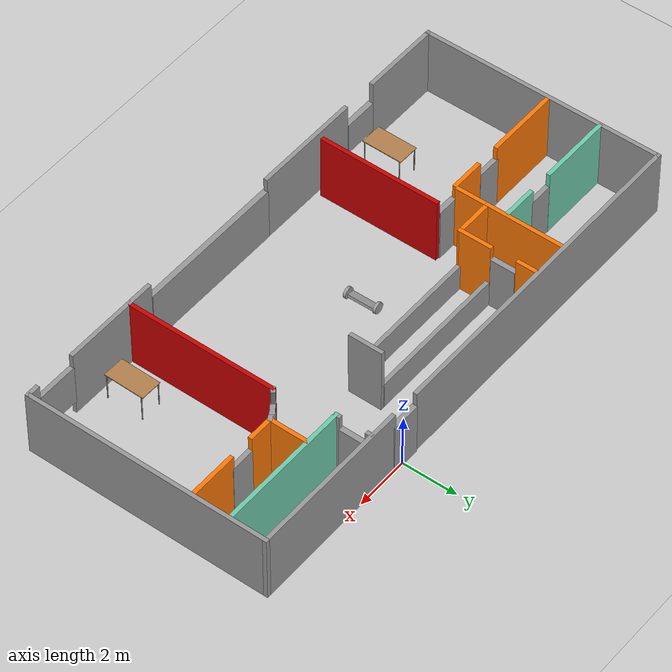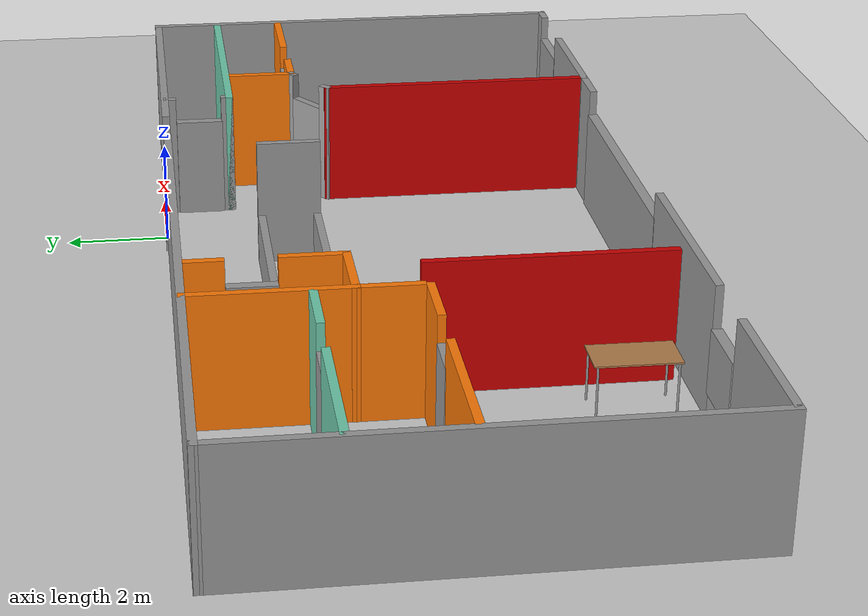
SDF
<sdf version="1.7">
 <world name="default">
  <plugin name="hello" filename="libhello.so"/>
  <light name="sun" type="directional">
   <pose>0 0 10 0 -0 0</pose>
   <diffuse>0.8 0.8 0.8 1</diffuse>
   <specular>0.2 0.2 0.2 1</specular>
   <attenuation>
    <range>1000</range>
    <constant>0.9</constant>
    <linear>0.01</linear>
    <quadratic>0.001</quadratic>
   </attenuation>
   <direction>-0.5 0.1 -0.9</direction>
   <spot><inner_angle>0</inner_angle><outer_angle>0</outer_angle><falloff>0</falloff></spot>
  </light>
  <model name="ground_plane">
   <static>1</static>
   <link name="link">
    <collision name="collision">
     <geometry><plane><normal>0 0 1</normal><size>100 100</size></plane></geometry>
     <surface>
      <contact><collide_bitmask>65535</collide_bitmask></contact>
      <friction><ode><mu>100</mu><mu2>50</mu2></ode></friction>
     </surface>
    </collision>
    <visual name="visual">
     <cast_shadows>0</cast_shadows>
     <geometry><plane><normal>0 0 1</normal><size>100 100</size></plane></geometry>
     <material>
      <script><uri>file://media/materials/scripts/gazebo.material</uri><name>Gazebo/Grey</name></script>
     </material>
    </visual>
   </link>
  </model>
  <gravity>0 0 -9.8</gravity>
  <magnetic_field>6e-06 2.3e-05 -4.2e-05</magnetic_field>
  <atmosphere type="adiabatic"/>
  <physics type="ode">
   <max_step_size>0.001</max_step_size>
   <real_time_factor>1</real_time_factor>
   <real_time_update_rate>1000</real_time_update_rate>
  </physics>
  <scene><ambient>0.4 0.4 0.4 1</ambient><background>0.7 0.7 0.7 1</background><shadows>1</shadows></scene>
  <spherical_coordinates>
   <surface_model>EARTH_WGS84</surface_model>
   <latitude_deg>0</latitude_deg>
   <longitude_deg>0</longitude_deg>
   <elevation>0</elevation>
   <heading_deg>0</heading_deg>
  </spherical_coordinates>
  <model name="Apt357">
   <pose>-3.29376 -4.44571 0 0 -0 0</pose>
   <link name="Door_0">
    <collision name="Door_0_Collision">
     <geometry><box><size>0.940227 0.2 2</size></box></geometry>
     <pose>0 0 1 0 -0 0</pose>
    </collision>
    <visual name="Door_0_Visual">
     <pose>0 0 1 0 -0 0</pose>
     <geometry><box><size>0.940227 0.2 2</size></box></geometry>
     <material>
      <script><uri>file://media/materials/scripts/gazebo.material</uri><name>Gazebo/Grey</name></script>
     </material>
    </visual>
    <pose>4.69619 3.68552 0 0 -0 1.5657</pose>
   </link>
   <link name="Door_1">
    <collision name="Door_1_Collision">
     <geometry><box><size>0.9 0.17 2</size></box></geometry>
     <pose>0 0 1 0 -0 0</pose>
    </collision>
    <visual name="Door_1_Visual">
     <pose>0 0 1 0 -0 0</pose>
     <geometry><box><size>0.9 0.17 2</size></box></geometry>
     <material>
      <script><uri>file://media/materials/scripts/gazebo.material</uri><name>Gazebo/Grey</name></script>
     </material>
    </visual>
    <pose>7.39446 1.68103 0 0 -0 -3.13021</pose>
   </link>
   <link name="Door_2">
    <collision name="Door_2_Collision">
     <geometry><box><size>0.9 0.17 2</size></box></geometry>
     <pose>0 0 1 0 -0 0</pose>
    </collision>
    <visual name="Door_2_Visual">
     <pose>0 0 1 0 -0 0</pose>
     <geometry><box><size>0.9 0.17 2</size></box></geometry>
     <material>
      <script><uri>file://media/materials/scripts/gazebo.material</uri><name>Gazebo/Grey</name></script>
     </material>
    </visual>
    <pose>5.51244 1.32777 0 0 -0 0.607379</pose>
   </link>
   <link name="Door_3">
    <collision name="Door_3_Collision">
     <geometry><box><size>5.53391 0.2 2</size></box></geometry>
     <pose>0 0 1 0 -0 0</pose>
    </collision>
    <visual name="Door_3_Visual">
     <pose>0 0 1 0 -0 0</pose>
     <geometry><box><size>5.53391 0.2 2</size></box></geometry>
     <material>
      <script><uri>file://media/materials/scripts/gazebo.material</uri><name>Gazebo/Grey</name></script>
     </material>
    </visual>
    <pose>1.32913 -4.46042 0 0 -0 0</pose>
   </link>
   <link name="Door_4">
    <collision name="Door_4_Collision">
     <geometry><box><size>1.08354 0.2 2</size></box></geometry>
     <pose>0 0 1 0 -0 0</pose>
    </collision>
    <visual name="Door_4_Visual">
     <pose>0 0 1 0 -0 0</pose>
     <geometry><box><size>1.08354 0.2 2</size></box></geometry>
     <material>
      <script><uri>file://media/materials/scripts/gazebo.material</uri><name>Gazebo/Grey</name></script>
     </material>
    </visual>
    <pose>3.22104 4.3933 0 0 -0 0</pose>
   </link>
   <link name="Door_5">
    <collision name="Door_5_Collision">
     <geometry><box><size>0.913225 0.2 2</size></box></geometry>
     <pose>0 0 1 0 -0 0</pose>
    </collision>
    <visual name="Door_5_Visual">
     <pose>0 0 1 0 -0 0</pose>
     <geometry><box><size>0.913225 0.2 2</size></box></geometry>
     <material>
      <script><uri>file://media/materials/scripts/gazebo.material</uri><name>Gazebo/Grey</name></script>
     </material>
    </visual>
    <pose>-3.39979 3.13846 0 0 0 -1.5708</pose>
   </link>
   <link name="Door_7">
    <collision name="Door_7_Collision">
     <geometry><box><size>0.782138 0.2 2</size></box></geometry>
     <pose>0 0 1 0 -0 0</pose>
    </collision>
    <visual name="Door_7_Visual">
     <pose>0 0 1 0 -0 0</pose>
     <geometry><box><size>0.782138 0.2 2</size></box></geometry>
     <material>
      <script><uri>file://media/materials/scripts/gazebo.material</uri><name>Gazebo/Grey</name></script>
     </material>
    </visual>
    <pose>-4.3167 0.241425 0 0 -0 0</pose>
   </link>
   <link name="Door_8">
    <collision name="Door_8_Collision">
     <geometry><box><size>0.9 0.17 2</size></box></geometry>
     <pose>0 0 1 0 -0 0</pose>
    </collision>
    <visual name="Door_8_Visual">
     <pose>0 0 1 0 -0 0</pose>
     <geometry><box><size>0.9 0.17 2</size></box></geometry>
     <material>
      <script><uri>file://media/materials/scripts/gazebo.material</uri><name>Gazebo/Grey</name></script>
     </material>
    </visual>
    <pose>-6.41069 0.265381 0 0 -0 3.13789</pose>
   </link>
   <link name="Door_9">
    <collision name="Door_9_Collision">
     <geometry><box><size>0.9 0.17 2</size></box></geometry>
     <pose>0 0 1 0 -0 0</pose>
    </collision>
    <visual name="Door_9_Visual">
     <pose>0 0 1 0 -0 0</pose>
     <geometry><box><size>0.9 0.17 2</size></box></geometry>
     <material>
      <script><uri>file://media/materials/scripts/gazebo.material</uri><name>Gazebo/Grey</name></script>
     </material>
    </visual>
    <pose>-6.43144 2.21143 0 0 -0 3.14159</pose>
   </link>
   <link name="Wall_10">
    <collision name="Wall_10_Collision">
     <geometry><box><size>5 0.15 2.5</size></box></geometry>
     <pose>0 0 1.25 0 -0 0</pose>
    </collision>
    <visual name="Wall_10_Visual">
     <pose>0 0 1.25 0 -0 0</pose>
     <geometry><box><size>5 0.15 2.5</size></box></geometry>
     <material>
      <script><uri>file://media/materials/scripts/gazebo.material</uri><name>Gazebo/Grey</name></script>
      <ambient>0.435294 0.796078 0.67451 1</ambient>
     </material>
     <meta><layer>0</layer></meta>
    </visual>
    <pose>7.12809 3.06139 0 0 -0 0</pose>
   </link>
   <link name="Wall_12">
    <collision name="Wall_12_Collision">
     <geometry><box><size>1.5 0.15 2.5</size></box></geometry>
     <pose>0 0 1.25 0 -0 0</pose>
    </collision>
    <visual name="Wall_12_Visual">
     <pose>0 0 1.25 0 -0 0</pose>
     <geometry><box><size>1.5 0.15 2.5</size></box></geometry>
     <material>
      <script><uri>file://media/materials/scripts/gazebo.material</uri><name>Gazebo/Grey</name></script>
      <ambient>0.996078 0.47451 0.0196078 1</ambient>
     </material>
     <meta><layer>0</layer></meta>
    </visual>
    <pose>6.02154 2.34761 0 0 -0 -1.5708</pose>
   </link>
   <link name="Wall_13">
    <collision name="Wall_13_Collision">
     <geometry><box><size>1 0.15 2.5</size></box></geometry>
     <pose>0 0 1.25 0 -0 0</pose>
    </collision>
    <visual name="Wall_13_Visual">
     <pose>0 0 1.25 0 -0 0</pose>
     <geometry><box><size>1 0.15 2.5</size></box></geometry>
     <material>
      <script><uri>file://media/materials/scripts/gazebo.material</uri><name>Gazebo/Grey</name></script>
      <ambient>0.996078 0.47451 0.0196078 1</ambient>
     </material>
     <meta><layer>0</layer></meta>
    </visual>
    <pose>6.44654 1.67261 0 0 -0 0</pose>
   </link>
   <link name="Wall_15">
    <collision name="Wall_15_Collision">
     <geometry><box><size>1.75 0.15 2.5</size></box></geometry>
     <pose>0 0 1.25 0 -0 0</pose>
    </collision>
    <visual name="Wall_15_Visual">
     <pose>0 0 1.25 0 -0 0</pose>
     <geometry><box><size>1.75 0.15 2.5</size></box></geometry>
     <material>
      <script><uri>file://media/materials/scripts/gazebo.material</uri><name>Gazebo/Grey</name></script>
      <ambient>0.996078 0.47451 0.0196078 1</ambient>
     </material>
     <meta><layer>0</layer></meta>
    </visual>
    <pose>8.65573 1.68871 0 0 -0 0</pose>
   </link>
   <link name="Wall_18">
    <collision name="Wall_18_Collision">
     <geometry><box><size>0.25 0.15 2.5</size></box></geometry>
     <pose>0 0 1.25 0 -0 0</pose>
    </collision>
    <visual name="Wall_18_Visual">
     <pose>0 0 1.25 0 -0 0</pose>
     <geometry><box><size>0.25 0.15 2.5</size></box></geometry>
     <material>
      <script><uri>file://media/materials/scripts/gazebo.material</uri><name>Gazebo/Grey</name></script>
      <ambient>1 1 1 1</ambient>
     </material>
     <meta><layer>0</layer></meta>
    </visual>
    <pose>5.97824 1.64761 0 0 -0 -2.61799</pose>
   </link>
   <link name="Wall_2">
    <collision name="Wall_2_Collision">
     <geometry><box><size>8.97428 0.15 2.5</size></box></geometry>
     <pose>0 0 1.25 0 -0 0</pose>
    </collision>
    <visual name="Wall_2_Visual">
     <pose>0 0 1.25 0 -0 0</pose>
     <geometry><box><size>8.97428 0.15 2.5</size></box></geometry>
     <material>
      <script><uri>file://media/materials/scripts/gazebo.material</uri><name>Gazebo/Grey</name></script>
      <ambient>1 1 1 1</ambient>
     </material>
     <meta><layer>0</layer></meta>
    </visual>
    <pose>-9.59402 -0.028495 0 0 -0 -1.56966</pose>
   </link>
   <link name="Wall_21">
    <collision name="Wall_21_Collision">
     <geometry><box><size>0.25 0.15 2.5</size></box></geometry>
     <pose>0 0 1.25 0 -0 0</pose>
    </collision>
    <visual name="Wall_21_Visual">
     <pose>0 0 1.25 0 -0 0</pose>
     <geometry><box><size>0.25 0.15 2.5</size></box></geometry>
     <material>
      <script><uri>file://media/materials/scripts/gazebo.material</uri><name>Gazebo/Grey</name></script>
      <ambient>1 1 1 1</ambient>
     </material>
     <meta><layer>0</layer></meta>
    </visual>
    <pose>5.08442 1.02531 0 0 -0 -2.35619</pose>
   </link>
   <link name="Wall_27">
    <collision name="Wall_27_Collision">
     <geometry><box><size>5.5 0.15 2.5</size></box></geometry>
     <pose>0 0 1.25 0 -0 0</pose>
    </collision>
    <visual name="Wall_27_Visual">
     <pose>0 0 1.25 0 -0 0</pose>
     <geometry><box><size>5.5 0.15 2.5</size></box></geometry>
     <material>
      <script><uri>file://media/materials/scripts/gazebo.material</uri><name>Gazebo/Grey</name></script>
      <ambient>0.8 0 0 1</ambient>
     </material>
     <meta><layer>0</layer></meta>
    </visual>
    <pose>5.04907 -1.68504 0 0 -0 -1.5708</pose>
   </link>
   <link name="Wall_29">
    <collision name="Wall_29_Collision">
     <geometry><box><size>0.5 0.15 2.5</size></box></geometry>
     <pose>0 0 1.25 0 -0 0</pose>
    </collision>
    <visual name="Wall_29_Visual">
     <pose>0 0 1.25 0 -0 0</pose>
     <geometry><box><size>0.5 0.15 2.5</size></box></geometry>
     <material>
      <script><uri>file://media/materials/scripts/gazebo.material</uri><name>Gazebo/Grey</name></script>
      <ambient>1 1 1 1</ambient>
     </material>
     <meta><layer>0</layer></meta>
    </visual>
    <pose>9.42411 -4.46264 0 0 -0 3.14159</pose>
   </link>
   <link name="Wall_31">
    <collision name="Wall_31_Collision">
     <geometry><box><size>2.75 0.15 2.5</size></box></geometry>
     <pose>0 0 1.25 0 -0 0</pose>
    </collision>
    <visual name="Wall_31_Visual">
     <pose>0 0 1.25 0 -0 0</pose>
     <geometry><box><size>2.75 0.15 2.5</size></box></geometry>
     <material>
      <script><uri>file://media/materials/scripts/gazebo.material</uri><name>Gazebo/Grey</name></script>
      <ambient>1 1 1 1</ambient>
     </material>
     <meta><layer>0</layer></meta>
    </visual>
    <pose>6.32022 -4.46113 0 0 -0 3.14159</pose>
   </link>
   <link name="Wall_33">
    <collision name="Wall_33_Collision">
     <geometry><box><size>1 0.15 2.5</size></box></geometry>
     <pose>0 0 1.25 0 -0 0</pose>
    </collision>
    <visual name="Wall_33_Visual">
     <pose>0 0 1.25 0 -0 0</pose>
     <geometry><box><size>1 0.15 2.5</size></box></geometry>
     <material>
      <script><uri>file://media/materials/scripts/gazebo.material</uri><name>Gazebo/Grey</name></script>
      <ambient>1 1 1 1</ambient>
     </material>
     <meta><layer>0</layer></meta>
    </visual>
    <pose>4.59522 -4.46113 0 0 -0 3.14159</pose>
   </link>
   <link name="Wall_35">
    <collision name="Wall_35_Collision">
     <geometry><box><size>3.0034 0.15 2.5</size></box></geometry>
     <pose>0 0 1.25 0 -0 0</pose>
    </collision>
    <visual name="Wall_35_Visual">
     <pose>0 0 1.25 0 -0 0</pose>
     <geometry><box><size>3.0034 0.15 2.5</size></box></geometry>
     <material>
      <script><uri>file://media/materials/scripts/gazebo.material</uri><name>Gazebo/Grey</name></script>
      <ambient>0.996078 0.47451 0.0196078 1</ambient>
     </material>
     <meta><layer>0</layer></meta>
    </visual>
    <pose>-4.72037 2.93601 0 0 -0 -1.57307</pose>
   </link>
   <link name="Wall_39">
    <collision name="Wall_39_Collision">
     <geometry><box><size>12.3481 0.15 2.5</size></box></geometry>
     <pose>0 0 1.25 0 -0 0</pose>
    </collision>
    <visual name="Wall_39_Visual">
     <pose>0 0 1.25 0 -0 0</pose>
     <geometry><box><size>12.3481 0.15 2.5</size></box></geometry>
     <material>
      <script><uri>file://media/materials/scripts/gazebo.material</uri><name>Gazebo/Grey</name></script>
      <ambient>1 1 1 1</ambient>
     </material>
     <meta><layer>0</layer></meta>
    </visual>
    <pose>-3.49996 4.38836 0 0 -0 -0.000164</pose>
   </link>
   <link name="Wall_41">
    <collision name="Wall_41_Collision">
     <geometry><box><size>6 0.15 2.5</size></box></geometry>
     <pose>0 0 1.25 0 -0 0</pose>
    </collision>
    <visual name="Wall_41_Visual">
     <pose>0 0 1.25 0 -0 0</pose>
     <geometry><box><size>6 0.15 2.5</size></box></geometry>
     <material>
      <script><uri>file://media/materials/scripts/gazebo.material</uri><name>Gazebo/Grey</name></script>
      <ambient>1 1 1 1</ambient>
     </material>
     <meta><layer>0</layer></meta>
    </visual>
    <pose>6.67411 4.38736 0 0 -0 0</pose>
   </link>
   <link name="Wall_43">
    <collision name="Wall_43_Collision">
     <geometry><box><size>1.50654 0.15 2.5</size></box></geometry>
     <pose>0 0 1.25 0 -0 0</pose>
    </collision>
    <visual name="Wall_43_Visual">
     <pose>0 0 1.25 0 -0 0</pose>
     <geometry><box><size>1.50654 0.15 2.5</size></box></geometry>
     <material>
      <script><uri>file://media/materials/scripts/gazebo.material</uri><name>Gazebo/Grey</name></script>
      <ambient>0.996078 0.47451 0.0196078 1</ambient>
     </material>
     <meta><layer>0</layer></meta>
    </visual>
    <pose>-4.04535 1.51095 0 0 -0 0.00241</pose>
   </link>
   <link name="Wall_44">
    <collision name="Wall_44_Collision">
     <geometry><box><size>1.25006 0.15 2.5</size></box></geometry>
     <pose>0 0 1.25 0 -0 0</pose>
    </collision>
    <visual name="Wall_44_Visual">
     <pose>0 0 1.25 0 -0 0</pose>
     <geometry><box><size>1.25006 0.15 2.5</size></box></geometry>
     <material>
      <script><uri>file://media/materials/scripts/gazebo.material</uri><name>Gazebo/Grey</name></script>
      <ambient>0.996078 0.47451 0.0196078 1</ambient>
     </material>
     <meta><layer>0</layer></meta>
    </visual>
    <pose>-3.36708 2.06261 0 0 -0 1.5708</pose>
   </link>
   <link name="Wall_46">
    <collision name="Wall_46_Collision">
     <geometry><box><size>0.75 0.15 2.5</size></box></geometry>
     <pose>0 0 1.25 0 -0 0</pose>
    </collision>
    <visual name="Wall_46_Visual">
     <pose>0 0 1.25 0 -0 0</pose>
     <geometry><box><size>0.75 0.15 2.5</size></box></geometry>
     <material>
      <script><uri>file://media/materials/scripts/gazebo.material</uri><name>Gazebo/Grey</name></script>
      <ambient>0.996078 0.47451 0.0196078 1</ambient>
     </material>
     <meta><layer>0</layer></meta>
    </visual>
    <pose>-3.4003 3.97345 0 0 -0 1.5708</pose>
   </link>
   <link name="Wall_5">
    <collision name="Wall_5_Collision">
     <geometry><box><size>9 0.15 2.5</size></box></geometry>
     <pose>0 0 1.25 0 -0 0</pose>
    </collision>
    <visual name="Wall_5_Visual">
     <pose>0 0 1.25 0 -0 0</pose>
     <geometry><box><size>9 0.15 2.5</size></box></geometry>
     <material>
      <script><uri>file://media/materials/scripts/gazebo.material</uri><name>Gazebo/Grey</name></script>
      <ambient>1 1 1 1</ambient>
     </material>
     <meta><layer>0</layer></meta>
    </visual>
    <pose>9.59911 -0.037639 0 0 -0 1.5708</pose>
   </link>
   <link name="Wall_50">
    <collision name="Wall_50_Collision">
     <geometry><box><size>5.5 0.15 1</size></box></geometry>
     <pose>0 0 0.5 0 -0 0</pose>
    </collision>
    <visual name="Wall_50_Visual">
     <pose>0 0 0.5 0 -0 0</pose>
     <geometry><box><size>5.5 0.15 1</size></box></geometry>
     <material>
      <script><uri>file://media/materials/scripts/gazebo.material</uri><name>Gazebo/Grey</name></script>
      <ambient>1 1 1 1</ambient>
     </material>
     <meta><layer>0</layer></meta>
    </visual>
    <pose>-0.692084 1.52128 0 0 -0 0</pose>
   </link>
   <link name="Wall_54">
    <collision name="Wall_54_Collision">
     <geometry><box><size>5.5 0.15 1</size></box></geometry>
     <pose>0 0 0.5 0 -0 0</pose>
    </collision>
    <visual name="Wall_54_Visual">
     <pose>0 0 0.5 0 -0 0</pose>
     <geometry><box><size>5.5 0.15 1</size></box></geometry>
     <material>
      <script><uri>file://media/materials/scripts/gazebo.material</uri><name>Gazebo/Grey</name></script>
      <ambient>1 1 1 1</ambient>
     </material>
     <meta><layer>0</layer></meta>
    </visual>
    <pose>-0.692084 2.61264 0 0 -0 0</pose>
   </link>
   <link name="Wall_56">
    <collision name="Wall_56_Collision">
     <geometry><box><size>1.24136 0.15 2.5</size></box></geometry>
     <pose>0 0 1.25 0 -0 0</pose>
    </collision>
    <visual name="Wall_56_Visual">
     <pose>0 0 1.25 0 -0 0</pose>
     <geometry><box><size>1.24136 0.15 2.5</size></box></geometry>
     <material>
      <script><uri>file://media/materials/scripts/gazebo.material</uri><name>Gazebo/Grey</name></script>
      <ambient>1 1 1 1</ambient>
     </material>
     <meta><layer>0</layer></meta>
    </visual>
    <pose>1.98292 2.06696 0 0 -0 -1.5708</pose>
   </link>
   <link name="Wall_59">
    <collision name="Wall_59_Collision">
     <geometry><box><size>3 0.15 2.5</size></box></geometry>
     <pose>0 0 1.25 0 -0 0</pose>
    </collision>
    <visual name="Wall_59_Visual">
     <pose>0 0 1.25 0 -0 0</pose>
     <geometry><box><size>3 0.15 2.5</size></box></geometry>
     <material>
      <script><uri>file://media/materials/scripts/gazebo.material</uri><name>Gazebo/Grey</name></script>
      <ambient>1 1 1 1</ambient>
     </material>
     <meta><layer>0</layer></meta>
    </visual>
    <pose>-8.15402 -4.44064 0 0 -0 0</pose>
   </link>
   <link name="Wall_61">
    <collision name="Wall_61_Collision">
     <geometry><box><size>4 0.15 2.5</size></box></geometry>
     <pose>0 0 1.25 0 -0 0</pose>
    </collision>
    <visual name="Wall_61_Visual">
     <pose>0 0 1.25 0 -0 0</pose>
     <geometry><box><size>4 0.15 2.5</size></box></geometry>
     <material>
      <script><uri>file://media/materials/scripts/gazebo.material</uri><name>Gazebo/Grey</name></script>
      <ambient>1 1 1 1</ambient>
     </material>
     <meta><layer>0</layer></meta>
    </visual>
    <pose>-3.39773 -4.44367 0 0 -0 0</pose>
   </link>
   <link name="Wall_63">
    <collision name="Wall_63_Collision">
     <geometry><box><size>1.25 0.15 2.5</size></box></geometry>
     <pose>0 0 1.25 0 -0 0</pose>
    </collision>
    <visual name="Wall_63_Visual">
     <pose>0 0 1.25 0 -0 0</pose>
     <geometry><box><size>1.25 0.15 2.5</size></box></geometry>
     <material>
      <script><uri>file://media/materials/scripts/gazebo.material</uri><name>Gazebo/Grey</name></script>
      <ambient>0.996078 0.47451 0.0196078 1</ambient>
     </material>
     <meta><layer>0</layer></meta>
    </visual>
    <pose>-4.71946 0.959312 0 0 -0 -1.56917</pose>
   </link>
   <link name="Wall_68">
    <collision name="Wall_68_Collision">
     <geometry><box><size>4.5 0.15 2.5</size></box></geometry>
     <pose>0 0 1.25 0 -0 0</pose>
    </collision>
    <visual name="Wall_68_Visual">
     <pose>0 0 1.25 0 -0 0</pose>
     <geometry><box><size>4.5 0.15 2.5</size></box></geometry>
     <material>
      <script><uri>file://media/materials/scripts/gazebo.material</uri><name>Gazebo/Grey</name></script>
      <ambient>0.8 0 0 1</ambient>
     </material>
     <meta><layer>0</layer></meta>
    </visual>
    <pose>-3.86018 -1.94563 0 0 -0 -1.5708</pose>
   </link>
   <link name="Wall_7">
    <collision name="Wall_7_Collision">
     <geometry><box><size>0.25 0.15 2.5</size></box></geometry>
     <pose>0 0 1.25 0 -0 0</pose>
    </collision>
    <visual name="Wall_7_Visual">
     <pose>0 0 1.25 0 -0 0</pose>
     <geometry><box><size>0.25 0.15 2.5</size></box></geometry>
     <material>
      <script><uri>file://media/materials/scripts/gazebo.material</uri><name>Gazebo/Grey</name></script>
      <ambient>1 1 1 1</ambient>
     </material>
     <meta><layer>0</layer></meta>
    </visual>
    <pose>4.69481 4.28508 0 0 -0 -1.5708</pose>
   </link>
   <link name="Wall_71">
    <collision name="Wall_71_Collision">
     <geometry><box><size>1.25 0.15 2.5</size></box></geometry>
     <pose>0 0 1.25 0 -0 0</pose>
    </collision>
    <visual name="Wall_71_Visual">
     <pose>0 0 1.25 0 -0 0</pose>
     <geometry><box><size>1.25 0.15 2.5</size></box></geometry>
     <material>
      <script><uri>file://media/materials/scripts/gazebo.material</uri><name>Gazebo/Grey</name></script>
      <ambient>0.996078 0.47451 0.0196078 1</ambient>
     </material>
     <meta><layer>0</layer></meta>
    </visual>
    <pose>-5.33522 0.26814 0 0 -0 3.14159</pose>
   </link>
   <link name="Wall_73">
    <collision name="Wall_73_Collision">
     <geometry><box><size>2.75 0.15 2.5</size></box></geometry>
     <pose>0 0 1.25 0 -0 0</pose>
    </collision>
    <visual name="Wall_73_Visual">
     <pose>0 0 1.25 0 -0 0</pose>
     <geometry><box><size>2.75 0.15 2.5</size></box></geometry>
     <material>
      <script><uri>file://media/materials/scripts/gazebo.material</uri><name>Gazebo/Grey</name></script>
      <ambient>0.996078 0.47451 0.0196078 1</ambient>
     </material>
     <meta><layer>0</layer></meta>
    </visual>
    <pose>-8.17183 0.26472 0 0 -0 3.14159</pose>
   </link>
   <link name="Wall_76">
    <collision name="Wall_76_Collision">
     <geometry><box><size>2.75 0.15 2.5</size></box></geometry>
     <pose>0 0 1.25 0 -0 0</pose>
    </collision>
    <visual name="Wall_76_Visual">
     <pose>0 0 1.25 0 -0 0</pose>
     <geometry><box><size>2.75 0.15 2.5</size></box></geometry>
     <material>
      <script><uri>file://media/materials/scripts/gazebo.material</uri><name>Gazebo/Grey</name></script>
      <ambient>0.435294 0.796078 0.67451 1</ambient>
     </material>
     <meta><layer>0</layer></meta>
    </visual>
    <pose>-8.23488 2.22575 0 0 -0 0</pose>
   </link>
   <link name="Wall_78">
    <collision name="Wall_78_Collision">
     <geometry><box><size>1.25 0.15 2.5</size></box></geometry>
     <pose>0 0 1.25 0 -0 0</pose>
    </collision>
    <visual name="Wall_78_Visual">
     <pose>0 0 1.25 0 -0 0</pose>
     <geometry><box><size>1.25 0.15 2.5</size></box></geometry>
     <material>
      <script><uri>file://media/materials/scripts/gazebo.material</uri><name>Gazebo/Grey</name></script>
      <ambient>0.435294 0.796078 0.67451 1</ambient>
     </material>
     <meta><layer>0</layer></meta>
    </visual>
    <pose>-5.39191 2.22022 0 0 -0 0</pose>
   </link>
   <link name="Wall_9">
    <collision name="Wall_9_Collision">
     <geometry><box><size>0.25 0.15 2.5</size></box></geometry>
     <pose>0 0 1.25 0 -0 0</pose>
    </collision>
    <visual name="Wall_9_Visual">
     <pose>0 0 1.25 0 -0 0</pose>
     <geometry><box><size>0.25 0.15 2.5</size></box></geometry>
     <material>
      <script><uri>file://media/materials/scripts/gazebo.material</uri><name>Gazebo/Grey</name></script>
      <ambient>1 1 1 1</ambient>
     </material>
     <meta><layer>0</layer></meta>
    </visual>
    <pose>4.70309 3.11139 0 0 -0 -1.5708</pose>
   </link>
   <link name="Window_0">
    <collision name="Window_0_Collision">
     <geometry><box><size>1.5 0.17 1.5</size></box></geometry>
     <pose>0 0 0.75 0 -0 0</pose>
    </collision>
    <visual name="Window_0_Visual">
     <pose>0 0 0.75 0 -0 0</pose>
     <geometry><box><size>1.5 0.17 1.5</size></box></geometry>
     <material>
      <script><uri>file://media/materials/scripts/gazebo.material</uri><name>Gazebo/Grey</name></script>
     </material>
    </visual>
    <pose>8.42477 -4.46113 0.5 0 -0 0</pose>
   </link>
   <link name="Window_1">
    <collision name="Window_1_Collision">
     <geometry><box><size>1.25 0.2 1.2</size></box></geometry>
     <pose>0 0 0.6 0 -0 0</pose>
    </collision>
    <visual name="Window_1_Visual">
     <pose>0 0 0.6 0 -0 0</pose>
     <geometry><box><size>1.25 0.2 1.2</size></box></geometry>
     <material>
      <script><uri>file://media/materials/scripts/gazebo.material</uri><name>Gazebo/Grey</name></script>
     </material>
    </visual>
    <pose>-6.02068 -4.44394 0.5 0 -0 0</pose>
   </link>
   <static>1</static>
  </model>
  <model name="table">
   <static>1</static>
   <link name="link_table">
    <collision name="surface">
     <pose>0 0 1 0 -0 0</pose>
     <geometry><box><size>1.5 0.8 0.03</size></box></geometry>
     <surface><friction><ode><mu>0.6</mu><mu2>0.6</mu2></ode></friction></surface>
    </collision>
    <visual name="visual11">
     <pose>0 0 1 0 -0 0</pose>
     <geometry><box><size>1.5 0.8 0.03</size></box></geometry>
     <material>
      <script><uri>file://media/materials/scripts/gazebo.material</uri><name>Gazebo/Wood</name></script>
     </material>
    </visual>
    <collision name="front_left_leg_c">
     <pose>0.68 0.38 0.5 0 -0 0</pose>
     <geometry><cylinder><radius>0.02</radius><length>1</length></cylinder></geometry>
    </collision>
    <visual name="front_left_leg_v">
     <pose>0.68 0.38 0.5 0 -0 0</pose>
     <geometry><cylinder><radius>0.02</radius><length>1</length></cylinder></geometry>
     <material>
      <script><uri>file://media/materials/scripts/gazebo.material</uri><name>Gazebo/Grey</name></script>
     </material>
    </visual>
    <collision name="front_right_leg_c">
     <pose>0.68 -0.38 0.5 0 -0 0</pose>
     <geometry><cylinder><radius>0.02</radius><length>1</length></cylinder></geometry>
    </collision>
    <visual name="front_right_leg_v">
     <pose>0.68 -0.38 0.5 0 -0 0</pose>
     <geometry><cylinder><radius>0.02</radius><length>1</length></cylinder></geometry>
     <material>
      <script><uri>file://media/materials/scripts/gazebo.material</uri><name>Gazebo/Grey</name></script>
     </material>
    </visual>
    <collision name="back_right_leg_c">
     <pose>-0.68 -0.38 0.5 0 -0 0</pose>
     <geometry><cylinder><radius>0.02</radius><length>1</length></cylinder></geometry>
    </collision>
    <visual name="back_right_leg_v">
     <pose>-0.68 -0.38 0.5 0 -0 0</pose>
     <geometry><cylinder><radius>0.02</radius><length>1</length></cylinder></geometry>
     <material>
      <script><uri>file://media/materials/scripts/gazebo.material</uri><name>Gazebo/Grey</name></script>
     </material>
    </visual>
    <collision name="back_left_leg_c">
     <pose>-0.68 0.38 0.5 0 -0 0</pose>
     <geometry><cylinder><radius>0.02</radius><length>1</length></cylinder></geometry>
    </collision>
    <visual name="back_left_leg_v">
     <pose>-0.68 0.38 0.5 0 -0 0</pose>
     <geometry><cylinder><radius>0.02</radius><length>1</length></cylinder></geometry>
     <material>
      <script><uri>file://media/materials/scripts/gazebo.material</uri><name>Gazebo/Grey</name></script>
     </material>
    </visual>
   </link>
   <pose>3.01258 -7.79707 0 0 -0 1.55637</pose>
  </model>
  <model name="table_0">
   <static>1</static>
   <link name="link_table2">
    <collision name="surface">
     <pose>0 0 1 0 -0 0</pose>
     <geometry><box><size>1.5 0.8 0.03</size></box></geometry>
     <surface><friction><ode><mu>0.6</mu><mu2>0.6</mu2></ode></friction></surface>
    </collision>
    <visual name="visual1">
     <pose>0 0 1 0 -0 0</pose>
     <geometry><box><size>1.5 0.8 0.03</size></box></geometry>
     <material>
      <script><uri>file://media/materials/scripts/gazebo.material</uri><name>Gazebo/Wood</name></script>
     </material>
    </visual>
    <collision name="front_left_leg_c">
     <pose>0.68 0.38 0.5 0 -0 0</pose>
     <geometry><cylinder><radius>0.02</radius><length>1</length></cylinder></geometry>
    </collision>
    <visual name="front_left_leg_v">
     <pose>0.68 0.38 0.5 0 -0 0</pose>
     <geometry><cylinder><radius>0.02</radius><length>1</length></cylinder></geometry>
     <material>
      <script><uri>file://media/materials/scripts/gazebo.material</uri><name>Gazebo/Grey</name></script>
     </material>
    </visual>
    <collision name="front_right_leg_c">
     <pose>0.68 -0.38 0.5 0 -0 0</pose>
     <geometry><cylinder><radius>0.02</radius><length>1</length></cylinder></geometry>
    </collision>
    <visual name="front_right_leg_v">
     <pose>0.68 -0.38 0.5 0 -0 0</pose>
     <geometry><cylinder><radius>0.02</radius><length>1</length></cylinder></geometry>
     <material>
      <script><uri>file://media/materials/scripts/gazebo.material</uri><name>Gazebo/Grey</name></script>
     </material>
    </visual>
    <collision name="back_right_leg_c">
     <pose>-0.68 -0.38 0.5 0 -0 0</pose>
     <geometry><cylinder><radius>0.02</radius><length>1</length></cylinder></geometry>
    </collision>
    <visual name="back_right_leg_v">
     <pose>-0.68 -0.38 0.5 0 -0 0</pose>
     <geometry><cylinder><radius>0.02</radius><length>1</length></cylinder></geometry>
     <material>
      <script><uri>file://media/materials/scripts/gazebo.material</uri><name>Gazebo/Grey</name></script>
     </material>
    </visual>
    <collision name="back_left_leg_c">
     <pose>-0.68 0.38 0.5 0 -0 0</pose>
     <geometry><cylinder><radius>0.02</radius><length>1</length></cylinder></geometry>
    </collision>
    <visual name="back_left_leg_v">
     <pose>-0.68 0.38 0.5 0 -0 0</pose>
     <geometry><cylinder><radius>0.02</radius><length>1</length></cylinder></geometry>
     <material>
      <script><uri>file://media/materials/scripts/gazebo.material</uri><name>Gazebo/Grey</name></script>
     </material>
    </visual>
   </link>
   <pose>-9.00302 -7.42334 0.471824 0 -0 1.56286</pose>
  </model>
  <model name="chasis_bada">
   <link name="link_0">
    <inertial>
     <mass>1</mass>
     <inertia>
      <ixx>0.166667</ixx>
      <ixy>0</ixy>
      <ixz>0</ixz>
      <iyy>0.166667</iyy>
      <iyz>0</iyz>
      <izz>0.166667</izz>
     </inertia>
    </inertial>
    <pose>-0.016667 0 -0.029999 0 -0 0</pose>
    <visual name="visual">
     <geometry><box><size>0.3 1 0.1</size></box></geometry>
     <material>
      <lighting>1</lighting>
      <script><uri>file://media/materials/scripts/gazebo.material</uri><name>Gazebo/Grey</name></script>
      <shader type="pixel"><normal_map>__default__</normal_map></shader>
      <ambient>0.3 0.3 0.3 1</ambient>
      <diffuse>0.7 0.7 0.7 1</diffuse>
      <specular>0.01 0.01 0.01 1</specular>
      <emissive>0 0 0 1</emissive>
     </material>
    </visual>
    <collision name="collision">
     <geometry><box><size>0.3 1 0.1</size></box></geometry>
     <surface>
      <friction>
       <ode><mu>1</mu><mu2>1</mu2><fdir1>0 0 0</fdir1><slip1>0</slip1><slip2>0</slip2></ode>
       <torsional>
        <coefficient>1</coefficient>
        <patch_radius>0</patch_radius>
        <surface_radius>0</surface_radius>
        <use_patch_radius>1</use_patch_radius>
        <ode><slip>0</slip></ode>
       </torsional>
      </friction>
      <bounce><restitution_coefficient>0</restitution_coefficient><threshold>1e+06</threshold></bounce>
      <contact>
       <collide_without_contact>0</collide_without_contact>
       <collide_without_contact_bitmask>1</collide_without_contact_bitmask>
       <collide_bitmask>1</collide_bitmask>
       <ode>
        <soft_cfm>0</soft_cfm>
        <soft_erp>0.2</soft_erp>
        <kp>1e+13</kp>
        <kd>1</kd>
        <max_vel>0.01</max_vel>
        <min_depth>0</min_depth>
       </ode>
       <bullet>
        <split_impulse>1</split_impulse>
        <split_impulse_penetration_threshold>-0.01</split_impulse_penetration_threshold>
        <soft_cfm>0</soft_cfm>
        <soft_erp>0.2</soft_erp>
        <kp>1e+13</kp>
        <kd>1</kd>
       </bullet>
      </contact>
     </surface>
    </collision>
   </link>
   <link name="link_1">
    <inertial>
     <mass>1</mass>
     <inertia><ixx>0.145833</ixx><ixy>0</ixy><ixz>0</ixz><iyy>0.145833</iyy><iyz>0</iyz><izz>0.125</izz></inertia>
    </inertial>
    <pose>0.033333 -0.550019 0.014997 1.5707 -0 0</pose>
    <visual name="visual">
     <geometry><cylinder><radius>0.2</radius><length>0.1</length></cylinder></geometry>
     <material>
      <lighting>1</lighting>
      <script><uri>file://media/materials/scripts/gazebo.material</uri><name>Gazebo/Grey</name></script>
      <shader type="pixel"><normal_map>__default__</normal_map></shader>
      <ambient>0.3 0.3 0.3 1</ambient>
      <diffuse>0.7 0.7 0.7 1</diffuse>
      <specular>0.01 0.01 0.01 1</specular>
      <emissive>0 0 0 1</emissive>
     </material>
    </visual>
    <collision name="collision">
     <geometry><cylinder><radius>0.2</radius><length>0.1</length></cylinder></geometry>
     <surface>
      <friction>
       <ode><mu>1</mu><mu2>1</mu2><fdir1>0 0 0</fdir1><slip1>0</slip1><slip2>0</slip2></ode>
       <torsional>
        <coefficient>1</coefficient>
        <patch_radius>0</patch_radius>
        <surface_radius>0</surface_radius>
        <use_patch_radius>1</use_patch_radius>
        <ode><slip>0</slip></ode>
       </torsional>
      </friction>
      <bounce><restitution_coefficient>0</restitution_coefficient><threshold>1e+06</threshold></bounce>
      <contact>
       <collide_without_contact>0</collide_without_contact>
       <collide_without_contact_bitmask>1</collide_without_contact_bitmask>
       <collide_bitmask>1</collide_bitmask>
       <ode>
        <soft_cfm>0</soft_cfm>
        <soft_erp>0.2</soft_erp>
        <kp>1e+13</kp>
        <kd>1</kd>
        <max_vel>0.01</max_vel>
        <min_depth>0</min_depth>
       </ode>
       <bullet>
        <split_impulse>1</split_impulse>
        <split_impulse_penetration_threshold>-0.01</split_impulse_penetration_threshold>
        <soft_cfm>0</soft_cfm>
        <soft_erp>0.2</soft_erp>
        <kp>1e+13</kp>
        <kd>1</kd>
       </bullet>
      </contact>
     </surface>
    </collision>
   </link>
   <link name="link_1_clone">
    <inertial>
     <mass>1</mass>
     <inertia><ixx>0.145833</ixx><ixy>0</ixy><ixz>0</ixz><iyy>0.145833</iyy><iyz>0</iyz><izz>0.125</izz></inertia>
    </inertial>
    <pose>-0.016667 0.550019 0.015001 1.5707 -0 0</pose>
    <visual name="visual">
     <geometry><cylinder><radius>0.2</radius><length>0.1</length></cylinder></geometry>
     <material>
      <lighting>1</lighting>
      <script><uri>file://media/materials/scripts/gazebo.material</uri><name>Gazebo/Grey</name></script>
      <shader type="pixel"><normal_map>__default__</normal_map></shader>
      <ambient>0.3 0.3 0.3 1</ambient>
      <diffuse>0.7 0.7 0.7 1</diffuse>
      <specular>0.01 0.01 0.01 1</specular>
      <emissive>0 0 0 1</emissive>
     </material>
    </visual>
    <collision name="collision">
     <geometry><cylinder><radius>0.2</radius><length>0.1</length></cylinder></geometry>
     <surface>
      <friction>
       <ode><mu>1</mu><mu2>1</mu2><fdir1>0 0 0</fdir1><slip1>0</slip1><slip2>0</slip2></ode>
       <torsional>
        <coefficient>1</coefficient>
        <patch_radius>0</patch_radius>
        <surface_radius>0</surface_radius>
        <use_patch_radius>1</use_patch_radius>
        <ode><slip>0</slip></ode>
       </torsional>
      </friction>
      <bounce><restitution_coefficient>0</restitution_coefficient><threshold>1e+06</threshold></bounce>
      <contact>
       <collide_without_contact>0</collide_without_contact>
       <collide_without_contact_bitmask>1</collide_without_contact_bitmask>
       <collide_bitmask>1</collide_bitmask>
       <ode>
        <soft_cfm>0</soft_cfm>
        <soft_erp>0.2</soft_erp>
        <kp>1e+13</kp>
        <kd>1</kd>
        <max_vel>0.01</max_vel>
        <min_depth>0</min_depth>
       </ode>
       <bullet>
        <split_impulse>1</split_impulse>
        <split_impulse_penetration_threshold>-0.01</split_impulse_penetration_threshold>
        <soft_cfm>0</soft_cfm>
        <soft_erp>0.2</soft_erp>
        <kp>1e+13</kp>
        <kd>1</kd>
       </bullet>
      </contact>
     </surface>
    </collision>
   </link>
   <joint name="link_0_JOINT_0" type="revolute">
    <parent>link_0</parent>
    <child>link_1</child>
    <axis>
     <xyz>1 0 0</xyz>
     <limit>
      <lower>-1.79769e+308</lower>
      <upper>1.79769e+308</upper>
      <effort>-1</effort>
      <velocity>-1</velocity>
     </limit>
     <dynamics>
      <spring_reference>0</spring_reference>
      <spring_stiffness>0</spring_stiffness>
      <damping>0</damping>
      <friction>0</friction>
     </dynamics>
    </axis>
    <physics>
     <ode><limit><cfm>0</cfm><erp>0.2</erp></limit><suspension><cfm>0</cfm><erp>0.2</erp></suspension></ode>
    </physics>
   </joint>
   <joint name="link_0_JOINT_1" type="revolute">
    <parent>link_0</parent>
    <child>link_1_clone</child>
    <axis>
     <xyz>1 0 0</xyz>
     <limit>
      <lower>-1.79769e+308</lower>
      <upper>1.79769e+308</upper>
      <effort>-1</effort>
      <velocity>-1</velocity>
     </limit>
     <dynamics>
      <spring_reference>0</spring_reference>
      <spring_stiffness>0</spring_stiffness>
      <damping>0</damping>
      <friction>0</friction>
     </dynamics>
    </axis>
    <physics>
     <ode><limit><cfm>0</cfm><erp>0.2</erp></limit><suspension><cfm>0</cfm><erp>0.2</erp></suspension></ode>
    </physics>
   </joint>
   <static>0</static>
   <pose>-4.25956 -4.78736 0.183596 0.009648 -0.20915 0.00338</pose>
  </model>
 </world>
</sdf>
